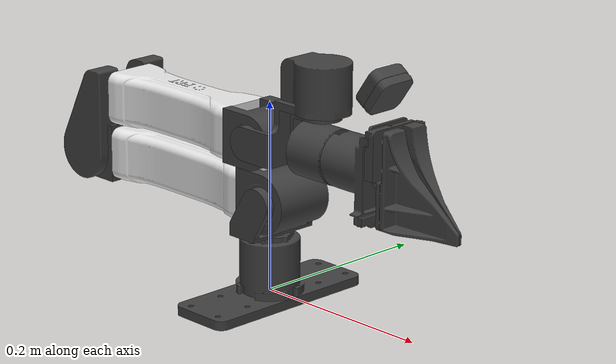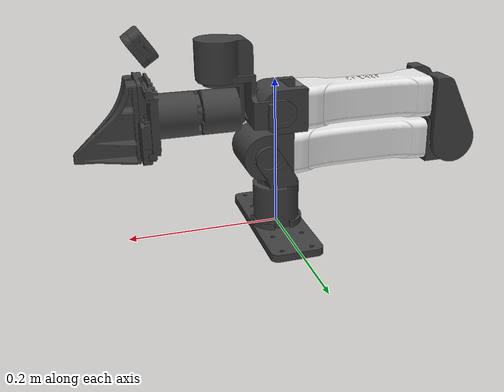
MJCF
<mujoco model="yam_v0">
  <compiler angle="radian" meshdir="assets"/>

  <default>
    <default class="yam">
      <site group="5" size="0.005" rgba="0 1 0 1"/>
      <joint axis="0 0 1"/>
      <default class="visual">
        <geom type="mesh" contype="0" conaffinity="0" density="0" group="2" material="black"/>
      </default>
      <default class="collision">
        <geom group="3" type="capsule"/>
        <default class="sphere_collision">
          <geom size="0.0006 0 0" type="sphere" rgba="1 0 0 1" group="4"/>
        </default>
      </default>
      <default class="finger">
        <joint type="slide"/>
      </default>
    </default>
  </default>

  <asset>
    <material name="black" rgba="0.25 0.25 0.25 1"/>
    <material name="white" rgba="0.9 0.9 0.9 1"/>

    <mesh file="model2.stl"/>
    <mesh file="model2__2.stl"/>
    <mesh file="model2__3.stl"/>
    <mesh file="model2__4.stl"/>
    <mesh file="model2__5.stl"/>
    <mesh file="model2__6.stl"/>
    <mesh file="model2__7.stl"/>
    <mesh file="model2__8.stl"/>
    <mesh file="model2__9.stl"/>
    <mesh file="model2__10.stl"/>
    <mesh file="model2__11.stl"/>
    <mesh file="model2__12.stl"/>
    <mesh file="model2__13.stl"/>
    <mesh file="model2__14.stl"/>
    <mesh file="model2__15.stl"/>
    <mesh file="model2__16.stl"/>
    <mesh file="model2__17.stl"/>

    <mesh name="camera_d405" file="d405.stl"/>
  </asset>

  <worldbody>
    <camera name="front_cam" pos="1.1 0 .5" xyaxes="0 1 0 -0.3 0 0.7"/>
    <body name="arm" childclass="yam">
      <geom class="visual" pos="0 0 -0.0006" quat="1 0 0 1" mesh="model2"/>
      <geom name="base_collision" class="collision" size="0.033 0.01" pos="0.0 0.0 0.026" quat="1 0 0 0"/>
      <body name="link_1" pos="0 0 0.0631" quat="1 0 0 1">
        <inertial pos="-0.00192861 -0.00795735 0.0208176" quat="0.297851 0.642634 0.360045 0.607185" mass="0.12415"
          diaginertia="0.000180751 0.000145532 5.89179e-05"/>
        <joint name="joint1" range="-2.61799 3.05433"/>
        <geom class="visual" pos="5.26159e-07 2.34355e-07 -0.0632" quat="1 0 0 0" mesh="model2__2"/>
        <body name="link_2" pos="2.5e-05 -0.02 0.0409" quat="1 1 1 1">
          <inertial pos="0.132008 2.10599e-06 0.000293073" quat="1 1 1 1" mass="1.24434"
            diaginertia="0.0121902 0.0121318 0.000683304"/>
          <joint name="joint2" range="0 3.66519"/>
          <geom class="visual" pos="0.0199992 -0.1041 -2.44738e-05" quat="1 -1 -1 -1" mesh="model2__3"/>
          <geom class="visual" pos="0.0199992 -0.1041 -2.44738e-05" quat="1 -1 -1 -1" mesh="model2__4"/>
          <geom class="visual" pos="0.0199992 -0.1041 -2.44738e-05" quat="1 -1 -1 -1" mesh="model2__5" material="white"/>
          <geom name="link2_1_collision" class="collision" size="0.032 0.11" pos="0.13 0 0" quat="1 0 1 0"/>
          <geom name="link2_2_collision" class="collision" size="0.033 0.02" pos="0 0.0 0" quat="1 0 0 0"/>
          <geom name="link2_3_collision" class="collision" size="0.033 0.025" pos="0.265 0 0" quat="1 0 0 0"/>
          <body name="link_3" pos="0.264 0 0" quat="0 1 0 0">
            <inertial pos="-0.121816 -0.054846 -0.000111108" quat="1 1 1 1" mass="0.853698"
              diaginertia="0.00699732 0.00696112 0.000788244"/>
            <joint name="joint3" range="0 3.66519"/>
            <geom class="visual" pos="-0.244001 0.104101 2.44738e-05" quat="1 1 1 -1" mesh="model2__6"/>
            <geom class="visual" pos="-0.244001 0.104101 2.44738e-05" quat="1 1 1 -1" mesh="model2__7"/>
            <geom class="visual" pos="-0.244001 0.104101 2.44738e-05" quat="1 1 1 -1" mesh="model2__8" material="white"/>
            <geom class="visual" pos="-0.244001 0.104101 2.44738e-05" quat="1 1 1 -1" mesh="model2__9"/>
            <geom name="link3_1_collision" class="collision" size="0.034 0.12" pos="-0.14 -0.06 0.0" quat="1 0 1 0"/>
            <geom name="link3_2_collision" class="collision" size="0.034 0.015" pos="-0.24 -0.06 0.0" quat="1 0 0 0"/>
            <body name="link_4" pos="-0.245 -0.06 0" quat="1 0 0 0">
              <inertial pos="-0.0769778 -0.0527104 0.000154878" quat="0.667 0.667 -0.236 -0.236" mass="0.463511"
                diaginertia="0.000791532 0.000744733 0.000282116"/>
              <joint name="joint4" range="-1.5708 1.5708"/>
              <geom class="visual" pos="0.00100023 0.164101 2.44738e-05" quat="1 1 1 -1" mesh="model2__10"/>
              <geom name="link4_1_collision" class="collision" size="0.03 0.015" pos="-0.073 -0.06 0.0" quat="1 1 0 0"/>
              <body name="link_5" pos="-0.074 -0.0395 2.5e-05" quat="1 -1 1 1">
                <inertial pos="3.64861e-05 0.00025665 0.0353526" quat="1 0 0 0" mass="0.350962"
                  diaginertia="0.000197802 0.0001775 0.000147402"/>
                <joint name="joint5" range="-1.5708 1.5708"/>
                <geom class="visual" pos="0 -0.0749971 0.203601" quat="1.32679e-06 1 0 0" mesh="model2__11"/>
                <geom name="link5_1_collision" class="collision" size="0.030 0.015" pos="0 0.025 0.0395" quat="1 1 0 0"/>
                <body name="link_6" pos="0 0.0353 0.0395" quat="1 -1 0 0">
                  <inertial pos="-0.000217767 7.37059e-05 0.0270545" quat="1 1 0 0" mass="0.367476"
                    diaginertia="0.000265958 0.000242686 0.000227409"/>
                  <joint name="joint6" range="-2.0944 2.0944"/>
                  <geom class="visual" pos="0 -0.164101 -0.110597" quat="1 -1 0 0" mesh="model2__12"/>
                  <geom class="visual" pos="0 -0.164101 -0.110597" quat="1 -1 0 0" mesh="model2__13"/>
                  <geom name="link6_1_collision" class="collision" size="0.01 0.035" pos="0 0.039 0.052" quat="1 0 1 0"/>
                  <geom name="link6_2_collision" class="collision" size="0.030 0.005" pos="0 0.0 0.03" quat="1 0 0 1"/>
                  <geom name="link6_3_collision" class="collision" size="0.01 0.035" pos="0 -0.039 0.052" quat="1 0 1 0"/>
                  <site name="tcp_site" quat="1 0 0 -1"/>
                  <site name="grasp_site" pos="0 -0.03 0.1247" quat="1 0 0 -1"/>
                  <body name="link_left_finger" pos="-0.037 0.0392 0.0605" quat="1 0 1 0">
                    <inertial pos="-0.0192995 -0.0365902 0.039774" quat="0.757351 0.568898 -0.3199 0.0" mass="0.118"
                      diaginertia="0.000159084 0.000154909 4.63655e-05"/>
                    <joint class="finger" name="left_finger" range="-0.00205 0.037524"/>
                    <geom class="visual" pos="0.171097 -0.203301 0.037" quat="1 -1 -1 -1" mesh="model2__14"/>
                    <geom class="visual" pos="0.171097 -0.203301 0.037" quat="1 -1 -1 -1" mesh="model2__15"/>
                    <body name="lf_rot" quat="1 -1 -1 1" pos="0.0 -0.0392 0.037">
                      <geom name="lf_rot1_collision" class="collision" size="0.01 0.03" pos="0.0 -0.02 0.012"
                        quat="1 0 1 0" rgba="0.381493 0.492734 0.780446 1"/>
                      <geom name="lf_rot2_collision" class="collision" size="0.01 0.02" pos="-0.02 -0.01 0.032"
                        quat="1 0 2.5 0" rgba="0.381493 0.492734 0.780446 1"/>
                      <body name="lf_down" quat="1 0 0 0" pos="-0.044 0.0 0.0">
                        <geom name="lf_down1_collision" class="collision" size="0.01 0.01" pos="0.0 -0.020 0.012"
                          quat="1 -0.1 0 0" rgba="0.381493 0.492734 0.780446 1"/>
                        <geom name="lf_down2_collision" class="collision" size="0.003 0.022" pos="0.005 -0.014 0.04"
                          quat="1 -0.2 0 0" rgba="0.381493 0.492734 0.780446 1"/>
                        <geom name="lf_down3_collision" class="collision" size="0.003 0.022" pos="-0.005 -0.014 0.04"
                          quat="1 -0.2 0 0" rgba="0.381493 0.492734 0.780446 1"/>
                        <geom name="lf_down4_collision" class="collision" type="box" size="0.006 0.002 0.04"
                          pos="0 -0.0024 0.046" quat="1 0 0 0" rgba="0.381493 0.492734 0.780446 1"/>
                        <geom name="lf_down5_collision" class="collision" type="box" size="0.006 0.002 0.039"
                          pos="0.027 -0.0024 0.053" quat="1 0 2.5 0" rgba="0.381493 0.492734 0.780446 1"/>
                        <geom name="lf_down6_collision" class="sphere_collision" pos="0.003  -0.0004 0.078"/>
                        <geom name="lf_down7_collision" class="sphere_collision" pos="-0.003 -0.0004 0.078"/>
                        <geom name="lf_down8_collision" class="sphere_collision" pos="0.003  -0.0004 0.07"/>
                        <geom name="lf_down9_collision" class="sphere_collision" pos="-0.003 -0.0004 0.07"/>
                        <geom name="lf_down10_collision" class="sphere_collision" pos="0.003  -0.0004 0.06"/>
                        <geom name="lf_down11_collision" class="sphere_collision" pos="-0.003 -0.0004 0.06"/>
                      </body>
                    </body>
                  </body>
                  <body name="camera_d405" pos="-0.0107 0.079729 0.066021" quat="0.953717 0.3007058 0 0">
                    <geom class="visual" mesh="camera_d405"/>
                    <geom class="collision" type="box" size=".018 .018 .01" pos="0 0 -0.01" group="4"/>
                    <body name="camera_frame" pos="0.009 0 0" quat="0 0 0 1">
                      <camera name="camera_d405" pos="0 0 0" quat="0 1 0 0" resolution="1280 720"
                        sensorsize="0.003896 0.00214" focal="0.00193 0.00193"/>
                    </body>
                  </body>
                  <body name="link_right_finger" pos="0.037 -0.0392 0.0605" quat="1 0 1 0">
                    <inertial pos="-0.0192995 0.0365902 -0.039774" quat="-0.757351 0.568898 -0.3199 0" mass="0.118"
                      diaginertia="0.000159084 0.000154909 4.63655e-05"/>
                    <joint class="finger" name="right_finger" range="-0.037524 0.00205"/>
                    <geom class="visual" pos="0.171097 -0.124901 -0.037" quat="1 -1 -1 -1" mesh="model2__16"/>
                    <geom class="visual" pos="0.171097 -0.124901 -0.037" quat="1 -1 -1 -1" mesh="model2__17"/>
                    <body name="rf_rot" quat="1 1 -1 -1" pos="0.0 0.0392 -0.037">
                      <geom name="rf_rot1_collision" class="collision" size="0.01 0.03" pos="0.0 -0.02 0.012"
                        quat="1 0 1 0" rgba="0.381493 0.492734 0.780446 1"/>
                      <geom name="rf_rot2_collision" class="collision" size="0.01 0.02" pos="0.02 -0.01 0.032"
                        quat="1 0 -2.5 0" rgba="0.381493 0.492734 0.780446 1"/>
                      <body name="rf_down" quat="1 0 0 0" pos="0.044 0.0 0.0">
                        <geom name="rf_down1_collision" class="collision" size="0.01 0.01" pos="0.0 -0.020 0.012"
                          quat="1 -0.1 0 0" rgba="0.381493 0.492734 0.780446 1"/>
                        <geom name="rf_down2_collision" class="collision" size="0.003 0.022" pos="0.005 -0.014 0.04"
                          quat="1 -0.2 0 0" rgba="0.381493 0.492734 0.780446 1"/>
                        <geom name="rf_down3_collision" class="collision" size="0.003 0.022" pos="-0.005 -0.014 0.04"
                          quat="1 -0.2 0 0" rgba="0.381493 0.492734 0.780446 1"/>
                        <geom name="rf_down4_collision" class="collision" type="box" size="0.006 0.002 0.04"
                          pos="0 -0.0024 0.046" quat="1 0 0 0" rgba="0.381493 0.492734 0.780446 1"/>
                        <geom name="rf_down5_collision" class="collision" type="box" size="0.006 0.002 0.039"
                          pos="-0.027 -0.0024 0.053" quat="1 0 -2.5 0" rgba="0.381493 0.492734 0.780446 1"/>
                        <geom name="rf_down6_collision" class="sphere_collision" pos="0.003 -0.0004 0.078"/>
                        <geom name="rf_down7_collision" class="sphere_collision" pos="-0.003 -0.0004 0.078"/>
                        <geom name="rf_down8_collision" class="sphere_collision" pos="0.003  -0.0004 0.07"/>
                        <geom name="rf_down9_collision" class="sphere_collision" pos="-0.003 -0.0004 0.07"/>
                        <geom name="rf_down10_collision" class="sphere_collision" pos="0.003 -0.0004 0.06"/>
                        <geom name="rf_down11_collision" class="sphere_collision" pos="-0.003 -0.0004 0.06"/>
                      </body>
                    </body>
                  </body>
                </body>
              </body>
            </body>
          </body>
        </body>
      </body>
    </body>
  </worldbody>

  <equality>
    <joint joint1="left_finger" joint2="right_finger" polycoef="0 -1 0 0 0"/>
  </equality>
</mujoco>
